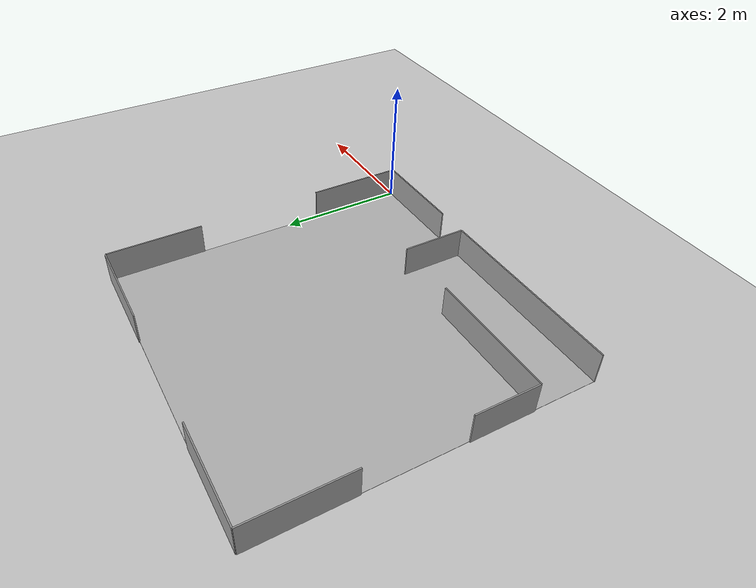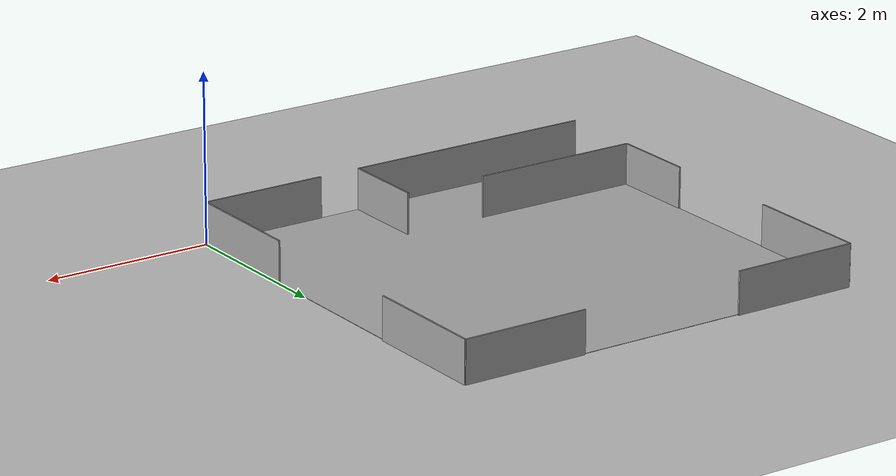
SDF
<sdf version="1.4">
 <world name="LLSF">
  <physics type="ode">
   <max_step_size>0.004</max_step_size>
   <real_time_factor>1</real_time_factor>
   <real_time_update_rate>300</real_time_update_rate>
  </physics>
  <scene><ambient>0.5 0.5 0.5 1.0</ambient><shadows>0</shadows></scene>
  <include><uri>model://ground_plane</uri></include>
  <include><uri>model://sun</uri></include>
  <include><uri>model://logistics_league_field_challenge</uri></include>
  <plugin name="llsf_refbox_comm" filename="libllsf_refbox_comm.so"/>
  <plugin name="timesync" filename="libtimesync.so"/>
  <plugin name="mps_placement" filename="libmps_placement.so"/>
 </world>
</sdf>

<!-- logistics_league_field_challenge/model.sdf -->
<sdf version="1.5">
  <model name="Logistics League Field Challenge">
    <pose>-2.5 2.5 0 0 0 0</pose>
    <static>true</static>
    <link name="field">
      <pose>0 0 0.01 0 0 0</pose>
      <collision name="collision">
        <geometry>
          <plane>
            <normal>0 0 1</normal>
            <size>15 9</size>
          </plane>
        </geometry>
        <surface>
          <friction>
            <ode>
              <mu>100</mu>
              <mu2>50</mu2>
            </ode>
          </friction>
        </surface>
      </collision>
      <visual name="carpet">
        <cast_shadows>false</cast_shadows>
        <geometry>
          <plane>
            <normal>0 0 1</normal>
            <size>5 5</size>
          </plane>
        </geometry>
        <material>
          <script>
            <uri>model://logistics_league_field_challenge/materials/scripts/</uri>
            <uri>model://logistics_league_field_challenge/materials/textures/</uri>
            <name>Logistics_League_Field/Image</name>
          </script>
        </material>
      </visual>
    </link>

    <link name="wall_bottom_middle_left_down">
      <pose>0.5 -2.0 0.25 0 0 0</pose>
      <visual name="wall_bottom_middle_left_down-visual">
        <geometry>
          <box>
            <size>.02 1 .5</size>
          </box>
        </geometry>
        <cast_shadows>false</cast_shadows>
        <material>
          <script>
            <uri>file://media/materials/scripts/gazebo.material</uri>
            <name>Gazebo/Grey</name>
          </script>
        </material>
      </visual>
      <collision name="wall_bottom_middle_left_down-collision">
        <geometry>
          <box>
            <size>.02 1 .5</size>
          </box>
        </geometry>
      </collision>
    </link>

    <link name="wall_bottom_middle_left_outer">
      <pose>-1.0 -2.5 0.25 0 0 1.570796327</pose>
      <visual name="wall_bottom_middle_left_outer-visual">
        <geometry>
          <box>
            <size>.02 3.0 .5</size>
          </box>
        </geometry>
        <cast_shadows>false</cast_shadows>
        <material>
          <script>
            <uri>file://media/materials/scripts/gazebo.material</uri>
            <name>Gazebo/Grey</name>
          </script>
        </material>
      </visual>
      <collision name="wall_bottom_middle_left_outer-collision">
        <geometry>
          <box>
            <size>.02 3.0 .5</size>
          </box>
        </geometry>
      </collision>
    </link>

    <link name="wall_bottom_left">
      <pose>-1.5 -1.5 0.25 0 0 1.570796327</pose>
      <visual name="wall_bottom_left-visual">
        <geometry>
          <box>
            <size>.02 2 .5</size>
          </box>
        </geometry>
        <cast_shadows>false</cast_shadows>
        <material>
          <script>
            <uri>file://media/materials/scripts/gazebo.material</uri>
            <name>Gazebo/Grey</name>
          </script>
        </material>
      </visual>
      <collision name="wall_bottom_left-collision">
        <geometry>
          <box>
            <size>.02 2 .5</size>
          </box>
        </geometry>
      </collision>
    </link>

    <link name="wall_bottom_right">
      <pose>1.75 -2.5 0.25 0 0 1.570796327</pose>
      <visual name="wall_bottom_right-visual">
        <geometry>
          <box>
            <size>.02 1.5 .5</size>
          </box>
        </geometry>
        <cast_shadows>false</cast_shadows>
        <material>
          <script>
            <uri>file://media/materials/scripts/gazebo.material</uri>
            <name>Gazebo/Grey</name>
          </script>
        </material>
      </visual>
      <collision name="wall_bottom_right-collision">
        <geometry>
          <box>
            <size>.02 1.5 .5</size>
          </box>
        </geometry>
      </collision>
    </link>

    <link name="wall_left_bottom">
      <pose>-2.5 -1.0 0.25 0 0 0</pose>
      <visual name="wall_left_bottom-visual">
        <geometry>
          <box>
            <size>.02 1 .5</size>
          </box>
        </geometry>
        <cast_shadows>false</cast_shadows>
        <material>
          <script>
            <uri>file://media/materials/scripts/gazebo.material</uri>
            <name>Gazebo/Grey</name>
          </script>
        </material>
      </visual>
      <collision name="wall_left_bottom-collision">
        <geometry>
          <box>
            <size>.02 1 .5</size>
          </box>
        </geometry>
      </collision>
    </link>

    <link name="wall_left_top">
      <pose>-2.5 1.75 0.25 0 0 0</pose>
      <visual name="wall_left_top-visual">
        <geometry>
          <box>
            <size>.02 1.5 .5</size>
          </box>
        </geometry>
        <cast_shadows>false</cast_shadows>
        <material>
          <script>
            <uri>file://media/materials/scripts/gazebo.material</uri>
            <name>Gazebo/Grey</name>
          </script>
        </material>
      </visual>
      <collision name="wall_left_top-collision">
        <geometry>
          <box>
            <size>.02 1.5 .5</size>
          </box>
        </geometry>
      </collision>
    </link>

    <link name="wall_right_bottom">
      <pose>2.5 -1.75 0.25 0 0 0</pose>
      <visual name="wall_right_bottom-visual">
        <geometry>
          <box>
            <size>.02 1.5 .5</size>
          </box>
        </geometry>
        <cast_shadows>false</cast_shadows>
        <material>
          <script>
            <uri>file://media/materials/scripts/gazebo.material</uri>
            <name>Gazebo/Grey</name>
          </script>
        </material>
      </visual>
      <collision name="wall_right_bottom-collision">
        <geometry>
          <box>
            <size>.02 1.5 .5</size>
          </box>
        </geometry>
      </collision>
    </link>

    <link name="wall_right_top">
      <pose>2.5 1.75 0.25 0 0 0</pose>
      <visual name="wall_right_top-visual">
        <geometry>
          <box>
            <size>.02 1.5 .5</size>
          </box>
        </geometry>
        <cast_shadows>false</cast_shadows>
        <material>
          <script>
            <uri>file://media/materials/scripts/gazebo.material</uri>
            <name>Gazebo/Grey</name>
          </script>
        </material>
      </visual>
      <collision name="wall_right_top-collision">
        <geometry>
          <box>
            <size>.02 1.5 .5</size>
          </box>
        </geometry>
      </collision>
    </link>

    <link name="wall_top_left">
      <pose>-1.75 2.5 0.25 0 0 1.570796327</pose>
      <visual name="wall_top_left-visual">
        <geometry>
          <box>
            <size>.02 1.5 .5</size>
          </box>
        </geometry>
        <cast_shadows>false</cast_shadows>
        <material>
          <script>
            <uri>file://media/materials/scripts/gazebo.material</uri>
            <name>Gazebo/Grey</name>
          </script>
        </material>
      </visual>
      <collision name="wall_top_left-collision">
        <geometry>
          <box>
            <size>.02 1.5 .5</size>
          </box>
        </geometry>
      </collision>
    </link>

    <link name="wall_top_right">
      <pose>1.75 2.5 0.25 0 0 1.570796327</pose>
      <visual name="wall_top_right-visual">
        <geometry>
          <box>
             <size>.02 1.5 .5</size>
          </box>
        </geometry>
        <cast_shadows>false</cast_shadows>
        <material>
          <script>
            <uri>file://media/materials/scripts/gazebo.material</uri>
            <name>Gazebo/Grey</name>
          </script>
        </material>
      </visual>
      <collision name="wall_top_right-collision">
        <geometry>
          <box>
            <size>.02 1.5 .5</size>
          </box>
        </geometry>
      </collision>
    </link>

  </model>
</sdf>
